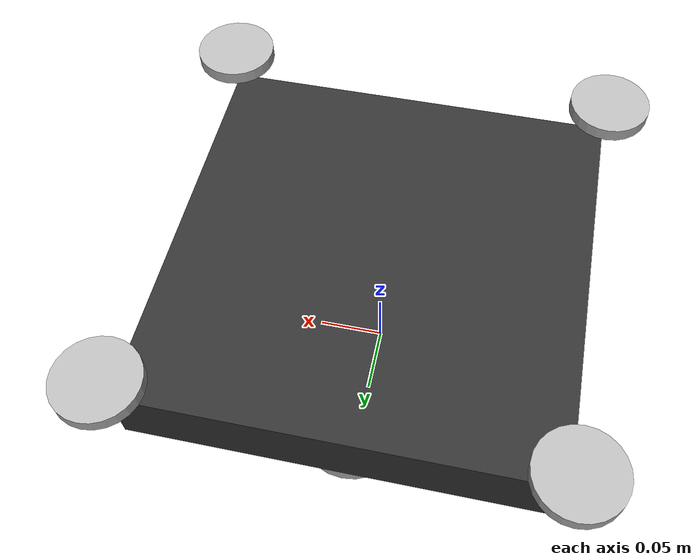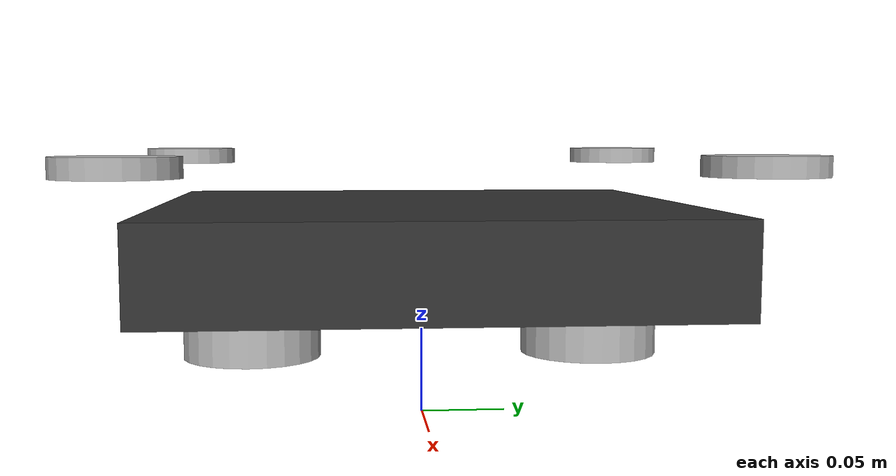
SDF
<?xml version="1.0" ?>
<sdf version="1.9">
  <model name="disaster_relief_drone">
    <static>false</static>

    <link name="base_link">
      <pose>0 0 0.1 0 0 0</pose>
      <inertial>
        <mass>1.0</mass>
        <inertia>
          <ixx>0.1</ixx>
          <iyy>0.1</iyy>
          <izz>0.1</izz>
        </inertia>
      </inertial>
      <visual name="base_visual">
        <geometry>
          <box>
            <size>0.3 0.3 0.05</size>
          </box>
        </geometry>
        <material>
          <ambient>0.2 0.2 0.2 1</ambient>
        </material>
      </visual>
      <collision name="base_collision">
        <geometry>
          <box>
            <size>0.3 0.3 0.05</size>
          </box>
        </geometry>
      </collision>

      <!-- 9軸IMU（加速度・ジャイロ・磁気） -->
      <sensor name="imu_sensor" type="imu">
        <always_on>true</always_on>
        <update_rate>400</update_rate>
        <pose>0 0 0.03 0 0 0</pose>
        <topic>/imu/data</topic>
        <imu>
          <angular_velocity>
            <x>
              <noise type="gaussian">
                <mean>0.0</mean>
                <stddev>0.0002</stddev>
              </noise>
            </x>
            <y>
              <noise type="gaussian">
                <mean>0.0</mean>
                <stddev>0.0002</stddev>
              </noise>
            </y>
            <z>
              <noise type="gaussian">
                <mean>0.0</mean>
                <stddev>0.0002</stddev>
              </noise>
            </z>
          </angular_velocity>
          <linear_acceleration>
            <x>
              <noise type="gaussian">
                <mean>0.0</mean>
                <stddev>0.01</stddev>
              </noise>
            </x>
            <y>
              <noise type="gaussian">
                <mean>0.0</mean>
                <stddev>0.01</stddev>
              </noise>
            </y>
            <z>
              <noise type="gaussian">
                <mean>0.0</mean>
                <stddev>0.01</stddev>
              </noise>
            </z>
          </linear_acceleration>
        </imu>
      </sensor>
      <!-- 磁気センサ（magnetometer） -->
      <sensor name="magnetometer_sensor" type="magnetometer">
        <always_on>true</always_on>
        <update_rate>50</update_rate>
        <pose>0 0 0.03 0 0 0</pose>
        <topic>/mag</topic>
        <magnetometer>
          <x>
            <noise type="gaussian">
              <mean>0.0</mean>
              <stddev>0.0001</stddev>
            </noise>
          </x>
          <y>
            <noise type="gaussian">
              <mean>0.0</mean>
              <stddev>0.0001</stddev>
            </noise>
          </y>
          <z>
            <noise type="gaussian">
              <mean>0.0</mean>
              <stddev>0.0001</stddev>
            </noise>
          </z>
        </magnetometer>
      </sensor>
      <!-- Camera sensor (RGB) -->
      <sensor name="camera_sensor" type="camera">
        <always_on>true</always_on>
        <update_rate>30</update_rate>
        <pose>0.1 0 0.08 0 0 0</pose>
        <camera>
          <horizontal_fov>1.3962634</horizontal_fov> <!-- 80deg -->
          <image>
            <width>640</width>
            <height>480</height>
            <format>R8G8B8</format>
          </image>
          <clip>
            <near>0.1</near>
            <far>100</far>
          </clip>
        </camera>
        <plugin name="gz_camera_system" filename="libgz-sim-camera-system.so">
          <topic>/camera/image_raw</topic>
        </plugin>
      </sensor>
      <!-- 3D LiDAR sensor -->
      <sensor name="lidar_sensor" type="gpu_lidar">
        <always_on>true</always_on>
        <update_rate>10</update_rate>
        <pose>0.1 0 0.09 0 0 0</pose>
        <ray>
          <scan>
            <horizontal>
              <samples>512</samples>
              <resolution>1</resolution>
              <min_angle>-3.14</min_angle>
              <max_angle>3.14</max_angle>
            </horizontal>
            <vertical>
              <samples>32</samples>
              <resolution>1</resolution>
              <min_angle>-0.26</min_angle>
              <max_angle>0.26</max_angle>
            </vertical>
          </scan>
          <range>
            <min>0.2</min>
            <max>30.0</max>
            <resolution>0.01</resolution>
          </range>
        </ray>
        <plugin name="gz_lidar_system" filename="libgz-sim-lidar-system.so">
          <topic>/lidar/points</topic>
        </plugin>
      </sensor>
    </link>

    <!-- 4 rotors -->
    <link name="rotor_1">
      <pose>0.15 0.15 0.15 0 0 0</pose>
      <inertial><mass>0.05</mass><inertia><ixx>0.001</ixx><iyy>0.001</iyy><izz>0.001</izz></inertia></inertial>
      <visual name="rotor_1_visual"><geometry><cylinder><radius>0.03</radius><length>0.01</length></cylinder></geometry></visual>
      <collision name="rotor_1_collision"><geometry><cylinder><radius>0.03</radius><length>0.01</length></cylinder></geometry></collision>
    </link>
    <joint name="rotor_1_joint" type="fixed">
      <parent>base_link</parent><child>rotor_1</child>
    </joint>
    <link name="rotor_2">
      <pose>-0.15 0.15 0.15 0 0 0</pose>
      <inertial><mass>0.05</mass><inertia><ixx>0.001</ixx><iyy>0.001</iyy><izz>0.001</izz></inertia></inertial>
      <visual name="rotor_2_visual"><geometry><cylinder><radius>0.03</radius><length>0.01</length></cylinder></geometry></visual>
      <collision name="rotor_2_collision"><geometry><cylinder><radius>0.03</radius><length>0.01</length></cylinder></geometry></collision>
    </link>
    <joint name="rotor_2_joint" type="fixed">
      <parent>base_link</parent><child>rotor_2</child>
    </joint>
    <link name="rotor_3">
      <pose>-0.15 -0.15 0.15 0 0 0</pose>
      <inertial><mass>0.05</mass><inertia><ixx>0.001</ixx><iyy>0.001</iyy><izz>0.001</izz></inertia></inertial>
      <visual name="rotor_3_visual"><geometry><cylinder><radius>0.03</radius><length>0.01</length></cylinder></geometry></visual>
      <collision name="rotor_3_collision"><geometry><cylinder><radius>0.03</radius><length>0.01</length></cylinder></geometry></collision>
    </link>
    <joint name="rotor_3_joint" type="fixed">
      <parent>base_link</parent><child>rotor_3</child>
    </joint>
    <link name="rotor_4">
      <pose>0.15 -0.15 0.15 0 0 0</pose>
      <inertial><mass>0.05</mass><inertia><ixx>0.001</ixx><iyy>0.001</iyy><izz>0.001</izz></inertia></inertial>
      <visual name="rotor_4_visual"><geometry><cylinder><radius>0.03</radius><length>0.01</length></cylinder></geometry></visual>
      <collision name="rotor_4_collision"><geometry><cylinder><radius>0.03</radius><length>0.01</length></cylinder></geometry></collision>
    </link>
    <joint name="rotor_4_joint" type="fixed">
      <parent>base_link</parent><child>rotor_4</child>
    </joint>

    <!-- 2 ducted fans -->
    <link name="ducted_fan_1">
      <pose>0.0 0.10 0.05 0 0 0</pose>
      <inertial><mass>0.08</mass><inertia><ixx>0.002</ixx><iyy>0.002</iyy><izz>0.002</izz></inertia></inertial>
      <visual name="ducted_fan_1_visual"><geometry><cylinder><radius>0.04</radius><length>0.03</length></cylinder></geometry></visual>
      <collision name="ducted_fan_1_collision"><geometry><cylinder><radius>0.04</radius><length>0.03</length></cylinder></geometry></collision>
    </link>
    <joint name="ducted_fan_1_joint" type="fixed">
      <parent>base_link</parent><child>ducted_fan_1</child>
    </joint>
    <link name="ducted_fan_2">
      <pose>0.0 -0.10 0.05 0 0 0</pose>
      <inertial><mass>0.08</mass><inertia><ixx>0.002</ixx><iyy>0.002</iyy><izz>0.002</izz></inertia></inertial>
      <visual name="ducted_fan_2_visual"><geometry><cylinder><radius>0.04</radius><length>0.03</length></cylinder></geometry></visual>
      <collision name="ducted_fan_2_collision"><geometry><cylinder><radius>0.04</radius><length>0.03</length></cylinder></geometry></collision>
    </link>
    <joint name="ducted_fan_2_joint" type="fixed">
      <parent>base_link</parent><child>ducted_fan_2</child>
    </joint>

    <!-- 姿勢制御・推力モデルプラグイン（Ignition MulticopterMotorModel） -->
    <plugin name="multicopter_motor_model" filename="libMulticopterMotorModel.so">
      <motor>
        <link_name>rotor_1</link_name>
        <direction>ccw</direction>
        <thrust_constant>1.0</thrust_constant>
        <torque_constant>0.02</torque_constant>
      </motor>
      <motor>
        <link_name>rotor_2</link_name>
        <direction>cw</direction>
        <thrust_constant>1.0</thrust_constant>
        <torque_constant>0.02</torque_constant>
      </motor>
      <motor>
        <link_name>rotor_3</link_name>
        <direction>ccw</direction>
        <thrust_constant>1.0</thrust_constant>
        <torque_constant>0.02</torque_constant>
      </motor>
      <motor>
        <link_name>rotor_4</link_name>
        <direction>cw</direction>
        <thrust_constant>1.0</thrust_constant>
        <torque_constant>0.02</torque_constant>
      </motor>
      <control>
        <enable>true</enable>
      </control>
    </plugin>

  </model>
</sdf>
<!--
  disaster_relief_drone.sdf
  - base_link: 本体
  - rotor_1〜4: 4つのローター
  - ducted_fan_1,2: 2つのダクトファン
  各リンクは簡易な慣性・ビジュアル・コリジョンを持つ
  今後: センサ追加や可動ジョイント化、プラグイン追加など拡張可能
-->
